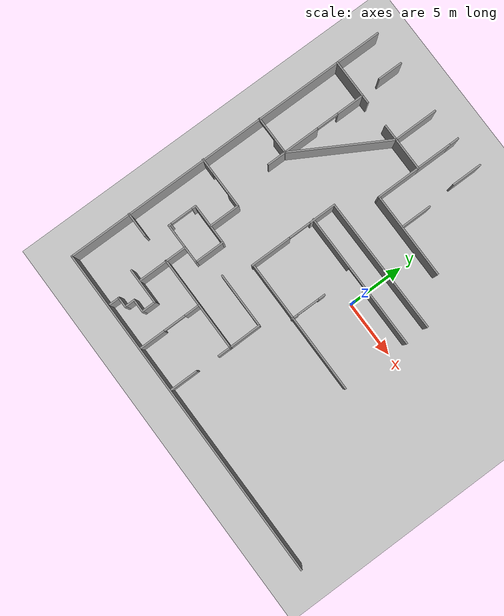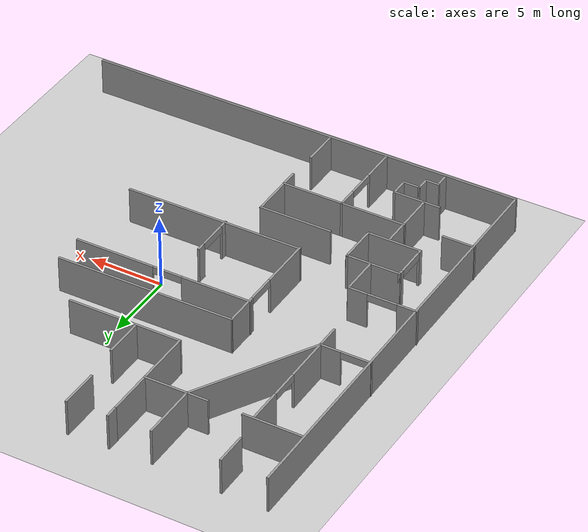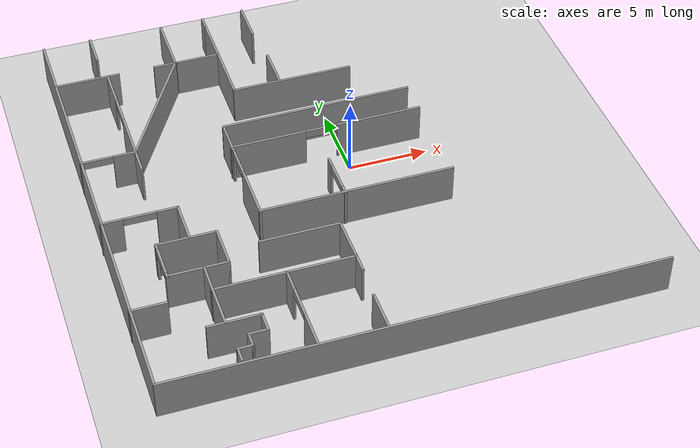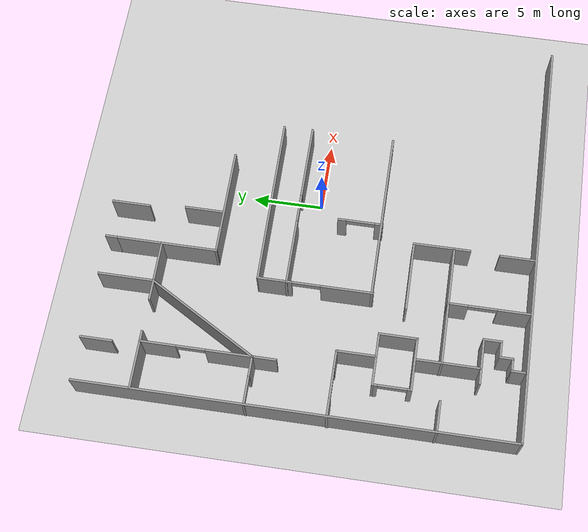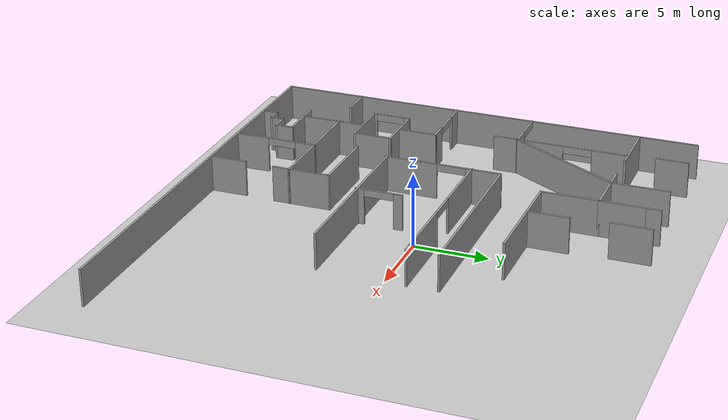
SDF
<sdf version="1.7">
 <world name="default">
  <model name="ground_plane">
   <static>1</static>
   <link name="link">
    <collision name="collision">
     <geometry><plane><normal>0 0 1</normal><size>100 100</size></plane></geometry>
     <surface><friction><ode><mu>100</mu><mu2>50</mu2></ode></friction></surface>
    </collision>
    <visual name="visual">
     <cast_shadows>0</cast_shadows>
     <geometry><plane><normal>0 0 1</normal><size>100 100</size></plane></geometry>
     <material>
      <script><uri>file://media/materials/scripts/gazebo.material</uri><name>Gazebo/Grey</name></script>
     </material>
    </visual>
   </link>
  </model>
  <model name="Untitled">
   <pose>-0.105598 -0.502872 0 0 -0 0</pose>
   <link name="Wall_10">
    <pose>-6.94082 -0.072116 0 0 -0 1.5708</pose>
    <visual name="Wall_10_Visual_0">
     <pose>-2.22777 0 1.25 0 -0 0</pose>
     <geometry><box><size>3.69446 0.15 2.5</size></box></geometry>
     <material>
      <script><uri>file://media/materials/scripts/gazebo.material</uri><name>Gazebo/Grey</name></script>
      <ambient>1 1 1 1</ambient>
     </material>
     <meta><layer>0</layer></meta>
    </visual>
    <collision name="Wall_10_Collision_0">
     <geometry><box><size>3.69446 0.15 2.5</size></box></geometry>
     <pose>-2.22777 0 1.25 0 -0 0</pose>
    </collision>
    <visual name="Wall_10_Visual_1">
     <pose>2.84723 0 1.25 0 -0 0</pose>
     <geometry><box><size>2.45554 0.15 2.5</size></box></geometry>
     <material>
      <script><uri>file://media/materials/scripts/gazebo.material</uri><name>Gazebo/Grey</name></script>
      <ambient>1 1 1 1</ambient>
     </material>
     <meta><layer>0</layer></meta>
    </visual>
    <collision name="Wall_10_Collision_1">
     <geometry><box><size>2.45554 0.15 2.5</size></box></geometry>
     <pose>2.84723 0 1.25 0 -0 0</pose>
    </collision>
    <visual name="Wall_10_Visual_2">
     <pose>0.619458 0 2.25 0 -0 0</pose>
     <geometry><box><size>2 0.15 0.5</size></box></geometry>
     <material>
      <script><uri>file://media/materials/scripts/gazebo.material</uri><name>Gazebo/Grey</name></script>
      <ambient>1 1 1 1</ambient>
     </material>
     <meta><layer>0</layer></meta>
    </visual>
    <collision name="Wall_10_Collision_2">
     <geometry><box><size>2 0.15 0.5</size></box></geometry>
     <pose>0.619458 0 2.25 0 -0 0</pose>
    </collision>
   </link>
   <link name="Wall_12">
    <collision name="Wall_12_Collision">
     <geometry><box><size>12.15 0.15 2.5</size></box></geometry>
     <pose>0 0 1.25 0 -0 0</pose>
    </collision>
    <visual name="Wall_12_Visual">
     <pose>0 0 1.25 0 -0 0</pose>
     <geometry><box><size>12.15 0.15 2.5</size></box></geometry>
     <material>
      <script><uri>file://media/materials/scripts/gazebo.material</uri><name>Gazebo/Grey</name></script>
      <ambient>1 1 1 1</ambient>
     </material>
     <meta><layer>0</layer></meta>
    </visual>
    <pose>-0.940819 -4.00136 0 0 -0 0</pose>
   </link>
   <link name="Wall_132">
    <collision name="Wall_132_Collision">
     <geometry><box><size>3 0.15 2.5</size></box></geometry>
     <pose>0 0 1.25 0 -0 0</pose>
    </collision>
    <visual name="Wall_132_Visual">
     <pose>0 0 1.25 0 -0 0</pose>
     <geometry><box><size>3 0.15 2.5</size></box></geometry>
     <material>
      <script><uri>file://media/materials/scripts/gazebo.material</uri><name>Gazebo/Grey</name></script>
      <ambient>1 1 1 1</ambient>
     </material>
     <meta><layer>0</layer></meta>
    </visual>
    <pose>-6.7689 10.9946 0 0 -0 0</pose>
   </link>
   <link name="Wall_133">
    <collision name="Wall_133_Collision">
     <geometry><box><size>4 0.15 2.5</size></box></geometry>
     <pose>0 0 1.25 0 -0 0</pose>
    </collision>
    <visual name="Wall_133_Visual">
     <pose>0 0 1.25 0 -0 0</pose>
     <geometry><box><size>4 0.15 2.5</size></box></geometry>
     <material>
      <script><uri>file://media/materials/scripts/gazebo.material</uri><name>Gazebo/Grey</name></script>
      <ambient>1 1 1 1</ambient>
     </material>
     <meta><layer>0</layer></meta>
    </visual>
    <pose>-5.34389 9.06962 0 0 -0 -1.5708</pose>
   </link>
   <link name="Wall_134">
    <collision name="Wall_134_Collision">
     <geometry><box><size>7.75 0.15 2.5</size></box></geometry>
     <pose>0 0 1.25 0 -0 0</pose>
    </collision>
    <visual name="Wall_134_Visual">
     <pose>0 0 1.25 0 -0 0</pose>
     <geometry><box><size>7.75 0.15 2.5</size></box></geometry>
     <material>
      <script><uri>file://media/materials/scripts/gazebo.material</uri><name>Gazebo/Grey</name></script>
      <ambient>1 1 1 1</ambient>
     </material>
     <meta><layer>0</layer></meta>
    </visual>
    <pose>-1.5439 7.14462 0 0 -0 0</pose>
   </link>
   <link name="Wall_138">
    <collision name="Wall_138_Collision">
     <geometry><box><size>3.25 0.15 2.5</size></box></geometry>
     <pose>0 0 1.25 0 -0 0</pose>
    </collision>
    <visual name="Wall_138_Visual">
     <pose>0 0 1.25 0 -0 0</pose>
     <geometry><box><size>3.25 0.15 2.5</size></box></geometry>
     <material>
      <script><uri>file://media/materials/scripts/gazebo.material</uri><name>Gazebo/Grey</name></script>
      <ambient>1 1 1 1</ambient>
     </material>
     <meta><layer>0</layer></meta>
    </visual>
    <pose>-5.34389 12.5446 0 0 -0 1.5708</pose>
   </link>
   <link name="Wall_139">
    <collision name="Wall_139_Collision">
     <geometry><box><size>1 0.15 2.5</size></box></geometry>
     <pose>0 0 1.25 0 -0 0</pose>
    </collision>
    <visual name="Wall_139_Visual">
     <pose>0 0 1.25 0 -0 0</pose>
     <geometry><box><size>1 0.15 2.5</size></box></geometry>
     <material>
      <script><uri>file://media/materials/scripts/gazebo.material</uri><name>Gazebo/Grey</name></script>
      <ambient>1 1 1 1</ambient>
     </material>
     <meta><layer>0</layer></meta>
    </visual>
    <pose>-5.34389 14.5196 0 0 -0 1.5708</pose>
   </link>
   <link name="Wall_141">
    <collision name="Wall_141_Collision">
     <geometry><box><size>2.75 0.15 2.5</size></box></geometry>
     <pose>0 0 1.25 0 -0 0</pose>
    </collision>
    <visual name="Wall_141_Visual">
     <pose>0 0 1.25 0 -0 0</pose>
     <geometry><box><size>2.75 0.15 2.5</size></box></geometry>
     <material>
      <script><uri>file://media/materials/scripts/gazebo.material</uri><name>Gazebo/Grey</name></script>
      <ambient>1 1 1 1</ambient>
     </material>
     <meta><layer>0</layer></meta>
    </visual>
    <pose>-2.3552 8.55347 0 0 -0 1.5708</pose>
   </link>
   <link name="Wall_143">
    <collision name="Wall_143_Collision">
     <geometry><box><size>2.75 0.15 2.5</size></box></geometry>
     <pose>0 0 1.25 0 -0 0</pose>
    </collision>
    <visual name="Wall_143_Visual">
     <pose>0 0 1.25 0 -0 0</pose>
     <geometry><box><size>2.75 0.15 2.5</size></box></geometry>
     <material>
      <script><uri>file://media/materials/scripts/gazebo.material</uri><name>Gazebo/Grey</name></script>
      <ambient>1 1 1 1</ambient>
     </material>
     <meta><layer>0</layer></meta>
    </visual>
    <pose>-2.61835 13.7628 0 0 -0 -1.5708</pose>
   </link>
   <link name="Wall_16">
    <collision name="Wall_16_Collision">
     <geometry><box><size>12.1502 0.15 2.5</size></box></geometry>
     <pose>0 0 1.25 0 -0 0</pose>
    </collision>
    <visual name="Wall_16_Visual">
     <pose>0 0 1.25 0 -0 0</pose>
     <geometry><box><size>12.1502 0.15 2.5</size></box></geometry>
     <material>
      <script><uri>file://media/materials/scripts/gazebo.material</uri><name>Gazebo/Grey</name></script>
      <ambient>1 1 1 1</ambient>
     </material>
     <meta><layer>0</layer></meta>
    </visual>
    <pose>-0.940819 3.96326 0 0 -0 0.005896</pose>
   </link>
   <link name="Wall_20">
    <pose>-1.71937 -2.51877 0 0 -0 -1.5708</pose>
    <visual name="Wall_20_Visual_0">
     <pose>-1.30824 0 1.25 0 -0 0</pose>
     <geometry><box><size>0.633515 0.15 2.5</size></box></geometry>
     <material>
      <script><uri>file://media/materials/scripts/gazebo.material</uri><name>Gazebo/Grey</name></script>
      <ambient>1 1 1 1</ambient>
     </material>
     <meta><layer>0</layer></meta>
    </visual>
    <collision name="Wall_20_Collision_0">
     <geometry><box><size>0.633515 0.15 2.5</size></box></geometry>
     <pose>-1.30824 0 1.25 0 -0 0</pose>
    </collision>
    <visual name="Wall_20_Visual_1">
     <pose>1.31676 0 1.25 0 -0 0</pose>
     <geometry><box><size>0.616485 0.15 2.5</size></box></geometry>
     <material>
      <script><uri>file://media/materials/scripts/gazebo.material</uri><name>Gazebo/Grey</name></script>
      <ambient>1 1 1 1</ambient>
     </material>
     <meta><layer>0</layer></meta>
    </visual>
    <collision name="Wall_20_Collision_1">
     <geometry><box><size>0.616485 0.15 2.5</size></box></geometry>
     <pose>1.31676 0 1.25 0 -0 0</pose>
    </collision>
    <visual name="Wall_20_Visual_2">
     <pose>0.008515 0 2.25 0 -0 0</pose>
     <geometry><box><size>2 0.15 0.5</size></box></geometry>
     <material>
      <script><uri>file://media/materials/scripts/gazebo.material</uri><name>Gazebo/Grey</name></script>
      <ambient>1 1 1 1</ambient>
     </material>
     <meta><layer>0</layer></meta>
    </visual>
    <collision name="Wall_20_Collision_2">
     <geometry><box><size>2 0.15 0.5</size></box></geometry>
     <pose>0.008515 0 2.25 0 -0 0</pose>
    </collision>
   </link>
   <link name="Wall_22">
    <pose>-0.939938 1.92283 0 0 -0 0</pose>
    <visual name="Wall_22_Visual_0">
     <pose>-3.72488 0 1.25 0 -0 0</pose>
     <geometry><box><size>4.80023 0.15 2.5</size></box></geometry>
     <material>
      <script><uri>file://media/materials/scripts/gazebo.material</uri><name>Gazebo/Grey</name></script>
      <ambient>1 1 1 1</ambient>
     </material>
     <meta><layer>0</layer></meta>
    </visual>
    <collision name="Wall_22_Collision_0">
     <geometry><box><size>4.80023 0.15 2.5</size></box></geometry>
     <pose>-3.72488 0 1.25 0 -0 0</pose>
    </collision>
    <visual name="Wall_22_Visual_1">
     <pose>3.40012 0 1.25 0 -0 0</pose>
     <geometry><box><size>5.44977 0.15 2.5</size></box></geometry>
     <material>
      <script><uri>file://media/materials/scripts/gazebo.material</uri><name>Gazebo/Grey</name></script>
      <ambient>1 1 1 1</ambient>
     </material>
     <meta><layer>0</layer></meta>
    </visual>
    <collision name="Wall_22_Collision_1">
     <geometry><box><size>5.44977 0.15 2.5</size></box></geometry>
     <pose>3.40012 0 1.25 0 -0 0</pose>
    </collision>
    <visual name="Wall_22_Visual_2">
     <pose>-0.324766 0 2.25 0 -0 0</pose>
     <geometry><box><size>2 0.15 0.5</size></box></geometry>
     <material>
      <script><uri>file://media/materials/scripts/gazebo.material</uri><name>Gazebo/Grey</name></script>
      <ambient>1 1 1 1</ambient>
     </material>
     <meta><layer>0</layer></meta>
    </visual>
    <collision name="Wall_22_Collision_2">
     <geometry><box><size>2 0.15 0.5</size></box></geometry>
     <pose>-0.324766 0 2.25 0 -0 0</pose>
    </collision>
   </link>
   <link name="Wall_24">
    <collision name="Wall_24_Collision">
     <geometry><box><size>4.15 0.15 2.5</size></box></geometry>
     <pose>0 0 1.25 0 -0 0</pose>
    </collision>
    <visual name="Wall_24_Visual">
     <pose>0 0 1.25 0 -0 0</pose>
     <geometry><box><size>4.15 0.15 2.5</size></box></geometry>
     <material>
      <script><uri>file://media/materials/scripts/gazebo.material</uri><name>Gazebo/Grey</name></script>
      <ambient>1 1 1 1</ambient>
     </material>
     <meta><layer>0</layer></meta>
    </visual>
    <pose>-13.9408 10.9986 0 0 -0 0</pose>
   </link>
   <link name="Wall_26">
    <collision name="Wall_26_Collision">
     <geometry><box><size>1.5 0.15 2.5</size></box></geometry>
     <pose>0 0 1.25 0 -0 0</pose>
    </collision>
    <visual name="Wall_26_Visual">
     <pose>0 0 1.25 0 -0 0</pose>
     <geometry><box><size>1.5 0.15 2.5</size></box></geometry>
     <material>
      <script><uri>file://media/materials/scripts/gazebo.material</uri><name>Gazebo/Grey</name></script>
      <ambient>1 1 1 1</ambient>
     </material>
     <meta><layer>0</layer></meta>
    </visual>
    <pose>-8.8689 10.9946 0 0 -0 0</pose>
   </link>
   <link name="Wall_27">
    <collision name="Wall_27_Collision">
     <geometry><box><size>4 0.15 2.5</size></box></geometry>
     <pose>0 0 1.25 0 -0 0</pose>
    </collision>
    <visual name="Wall_27_Visual">
     <pose>0 0 1.25 0 -0 0</pose>
     <geometry><box><size>4 0.15 2.5</size></box></geometry>
     <material>
      <script><uri>file://media/materials/scripts/gazebo.material</uri><name>Gazebo/Grey</name></script>
      <ambient>1 1 1 1</ambient>
     </material>
     <meta><layer>0</layer></meta>
    </visual>
    <pose>-8.19389 12.9196 0 0 -0 1.5708</pose>
   </link>
   <link name="Wall_29">
    <collision name="Wall_29_Collision">
     <geometry><box><size>9 0.15 2.5</size></box></geometry>
     <pose>0 0 1.25 0 -0 0</pose>
    </collision>
    <visual name="Wall_29_Visual">
     <pose>0 0 1.25 0 -0 0</pose>
     <geometry><box><size>9 0.15 2.5</size></box></geometry>
     <material>
      <script><uri>file://media/materials/scripts/gazebo.material</uri><name>Gazebo/Grey</name></script>
      <ambient>1 1 1 1</ambient>
     </material>
     <meta><layer>0</layer></meta>
    </visual>
    <pose>-10.4064 7.16245 0 0 -0 -2.0944</pose>
   </link>
   <link name="Wall_33">
    <pose>-14.2939 3.33029 0 0 -0 3.14159</pose>
    <visual name="Wall_33_Visual_0">
     <pose>-1.02372 0 1.25 0 -0 0</pose>
     <geometry><box><size>1.45256 0.15 2.5</size></box></geometry>
     <material>
      <script><uri>file://media/materials/scripts/gazebo.material</uri><name>Gazebo/Grey</name></script>
      <ambient>1 1 1 1</ambient>
     </material>
     <meta><layer>0</layer></meta>
    </visual>
    <collision name="Wall_33_Collision_0">
     <geometry><box><size>1.45256 0.15 2.5</size></box></geometry>
     <pose>-1.02372 0 1.25 0 -0 0</pose>
    </collision>
    <visual name="Wall_33_Visual_1">
     <pose>1.72628 0 1.25 0 -0 0</pose>
     <geometry><box><size>0.047445 0.15 2.5</size></box></geometry>
     <material>
      <script><uri>file://media/materials/scripts/gazebo.material</uri><name>Gazebo/Grey</name></script>
      <ambient>1 1 1 1</ambient>
     </material>
     <meta><layer>0</layer></meta>
    </visual>
    <collision name="Wall_33_Collision_1">
     <geometry><box><size>0.047445 0.15 2.5</size></box></geometry>
     <pose>1.72628 0 1.25 0 -0 0</pose>
    </collision>
    <visual name="Wall_33_Visual_2">
     <pose>0.702555 0 2.25 0 -0 0</pose>
     <geometry><box><size>2 0.15 0.5</size></box></geometry>
     <material>
      <script><uri>file://media/materials/scripts/gazebo.material</uri><name>Gazebo/Grey</name></script>
      <ambient>1 1 1 1</ambient>
     </material>
     <meta><layer>0</layer></meta>
    </visual>
    <collision name="Wall_33_Collision_2">
     <geometry><box><size>2 0.15 0.5</size></box></geometry>
     <pose>0.702555 0 2.25 0 -0 0</pose>
    </collision>
   </link>
   <link name="Wall_35">
    <pose>-12.6189 7.13029 0 0 -0 1.5708</pose>
    <visual name="Wall_35_Visual_0">
     <pose>-2.23626 0 1.25 0 -0 0</pose>
     <geometry><box><size>3.27749 0.15 2.5</size></box></geometry>
     <material>
      <script><uri>file://media/materials/scripts/gazebo.material</uri><name>Gazebo/Grey</name></script>
      <ambient>1 1 1 1</ambient>
     </material>
     <meta><layer>0</layer></meta>
    </visual>
    <collision name="Wall_35_Collision_0">
     <geometry><box><size>3.27749 0.15 2.5</size></box></geometry>
     <pose>-2.23626 0 1.25 0 -0 0</pose>
    </collision>
    <visual name="Wall_35_Visual_1">
     <pose>2.63874 0 1.25 0 -0 0</pose>
     <geometry><box><size>2.47251 0.15 2.5</size></box></geometry>
     <material>
      <script><uri>file://media/materials/scripts/gazebo.material</uri><name>Gazebo/Grey</name></script>
      <ambient>1 1 1 1</ambient>
     </material>
     <meta><layer>0</layer></meta>
    </visual>
    <collision name="Wall_35_Collision_1">
     <geometry><box><size>2.47251 0.15 2.5</size></box></geometry>
     <pose>2.63874 0 1.25 0 -0 0</pose>
    </collision>
    <visual name="Wall_35_Visual_2">
     <pose>0.402489 0 2.25 0 -0 0</pose>
     <geometry><box><size>2 0.15 0.5</size></box></geometry>
     <material>
      <script><uri>file://media/materials/scripts/gazebo.material</uri><name>Gazebo/Grey</name></script>
      <ambient>1 1 1 1</ambient>
     </material>
     <meta><layer>0</layer></meta>
    </visual>
    <collision name="Wall_35_Collision_2">
     <geometry><box><size>2 0.15 0.5</size></box></geometry>
     <pose>0.402489 0 2.25 0 -0 0</pose>
    </collision>
   </link>
   <link name="Wall_37">
    <collision name="Wall_37_Collision">
     <geometry><box><size>2.25 0.15 2.5</size></box></geometry>
     <pose>0 0 1.25 0 -0 0</pose>
    </collision>
    <visual name="Wall_37_Visual">
     <pose>0 0 1.25 0 -0 0</pose>
     <geometry><box><size>2.25 0.15 2.5</size></box></geometry>
     <material>
      <script><uri>file://media/materials/scripts/gazebo.material</uri><name>Gazebo/Grey</name></script>
      <ambient>1 1 1 1</ambient>
     </material>
     <meta><layer>0</layer></meta>
    </visual>
    <pose>-12.8901 13.9642 0 0 -0 -1.5708</pose>
   </link>
   <link name="Wall_39">
    <collision name="Wall_39_Collision">
     <geometry><box><size>1.75 0.15 2.5</size></box></geometry>
     <pose>0 0 1.25 0 -0 0</pose>
    </collision>
    <visual name="Wall_39_Visual">
     <pose>0 0 1.25 0 -0 0</pose>
     <geometry><box><size>1.75 0.15 2.5</size></box></geometry>
     <material>
      <script><uri>file://media/materials/scripts/gazebo.material</uri><name>Gazebo/Grey</name></script>
      <ambient>1 1 1 1</ambient>
     </material>
     <meta><layer>0</layer></meta>
    </visual>
    <pose>-12.6189 2.53029 0 0 -0 -1.5708</pose>
   </link>
   <link name="Wall_4">
    <collision name="Wall_4_Collision">
     <geometry><box><size>30.15 0.15 2.5</size></box></geometry>
     <pose>0 0 1.25 0 -0 0</pose>
    </collision>
    <visual name="Wall_4_Visual">
     <pose>0 0 1.25 0 -0 0</pose>
     <geometry><box><size>30.15 0.15 2.5</size></box></geometry>
     <material>
      <script><uri>file://media/materials/scripts/gazebo.material</uri><name>Gazebo/Grey</name></script>
      <ambient>1 1 1 1</ambient>
     </material>
     <meta><layer>0</layer></meta>
    </visual>
    <pose>-15.9408 -0.001359 0 0 -0 1.5708</pose>
   </link>
   <link name="Wall_41">
    <pose>-13.6967 -2.19975 0 0 -0 0</pose>
    <visual name="Wall_41_Visual_0">
     <pose>-1.67653 0 1.25 0 -0 0</pose>
     <geometry><box><size>1.39694 0.15 2.5</size></box></geometry>
     <material>
      <script><uri>file://media/materials/scripts/gazebo.material</uri><name>Gazebo/Grey</name></script>
      <ambient>1 1 1 1</ambient>
     </material>
     <meta><layer>0</layer></meta>
    </visual>
    <collision name="Wall_41_Collision_0">
     <geometry><box><size>1.39694 0.15 2.5</size></box></geometry>
     <pose>-1.67653 0 1.25 0 -0 0</pose>
    </collision>
    <visual name="Wall_41_Visual_1">
     <pose>1.69847 0 1.25 0 -0 0</pose>
     <geometry><box><size>1.35306 0.15 2.5</size></box></geometry>
     <material>
      <script><uri>file://media/materials/scripts/gazebo.material</uri><name>Gazebo/Grey</name></script>
      <ambient>1 1 1 1</ambient>
     </material>
     <meta><layer>0</layer></meta>
    </visual>
    <collision name="Wall_41_Collision_1">
     <geometry><box><size>1.35306 0.15 2.5</size></box></geometry>
     <pose>1.69847 0 1.25 0 -0 0</pose>
    </collision>
    <visual name="Wall_41_Visual_2">
     <pose>0.021943 0 2.25 0 -0 0</pose>
     <geometry><box><size>2 0.15 0.5</size></box></geometry>
     <material>
      <script><uri>file://media/materials/scripts/gazebo.material</uri><name>Gazebo/Grey</name></script>
      <ambient>1 1 1 1</ambient>
     </material>
     <meta><layer>0</layer></meta>
    </visual>
    <collision name="Wall_41_Collision_2">
     <geometry><box><size>2 0.15 0.5</size></box></geometry>
     <pose>0.021943 0 2.25 0 -0 0</pose>
    </collision>
   </link>
   <link name="Wall_45">
    <pose>-13.3751 -6.17488 0 0 -0 -1.5708</pose>
    <visual name="Wall_45_Visual_0">
     <pose>-1.16612 0 1.25 0 -0 0</pose>
     <geometry><box><size>0.417771 0.15 2.5</size></box></geometry>
     <material>
      <script><uri>file://media/materials/scripts/gazebo.material</uri><name>Gazebo/Grey</name></script>
      <ambient>1 1 1 1</ambient>
     </material>
     <meta><layer>0</layer></meta>
    </visual>
    <collision name="Wall_45_Collision_0">
     <geometry><box><size>0.417771 0.15 2.5</size></box></geometry>
     <pose>-1.16612 0 1.25 0 -0 0</pose>
    </collision>
    <visual name="Wall_45_Visual_1">
     <pose>1.20888 0 1.25 0 -0 0</pose>
     <geometry><box><size>0.332229 0.15 2.5</size></box></geometry>
     <material>
      <script><uri>file://media/materials/scripts/gazebo.material</uri><name>Gazebo/Grey</name></script>
      <ambient>1 1 1 1</ambient>
     </material>
     <meta><layer>0</layer></meta>
    </visual>
    <collision name="Wall_45_Collision_1">
     <geometry><box><size>0.332229 0.15 2.5</size></box></geometry>
     <pose>1.20888 0 1.25 0 -0 0</pose>
    </collision>
    <visual name="Wall_45_Visual_2">
     <pose>0.042771 0 2.25 0 -0 0</pose>
     <geometry><box><size>2 0.15 0.5</size></box></geometry>
     <material>
      <script><uri>file://media/materials/scripts/gazebo.material</uri><name>Gazebo/Grey</name></script>
      <ambient>1 1 1 1</ambient>
     </material>
     <meta><layer>0</layer></meta>
    </visual>
    <collision name="Wall_45_Collision_2">
     <geometry><box><size>2 0.15 0.5</size></box></geometry>
     <pose>0.042771 0 2.25 0 -0 0</pose>
    </collision>
   </link>
   <link name="Wall_46">
    <collision name="Wall_46_Collision">
     <geometry><box><size>3.75 0.15 2.5</size></box></geometry>
     <pose>0 0 1.25 0 -0 0</pose>
    </collision>
    <visual name="Wall_46_Visual">
     <pose>0 0 1.25 0 -0 0</pose>
     <geometry><box><size>3.75 0.15 2.5</size></box></geometry>
     <material>
      <script><uri>file://media/materials/scripts/gazebo.material</uri><name>Gazebo/Grey</name></script>
      <ambient>1 1 1 1</ambient>
     </material>
     <meta><layer>0</layer></meta>
    </visual>
    <pose>-11.5751 -7.47488 0 0 -0 0</pose>
   </link>
   <link name="Wall_47">
    <collision name="Wall_47_Collision">
     <geometry><box><size>2.75 0.15 2.5</size></box></geometry>
     <pose>0 0 1.25 0 -0 0</pose>
    </collision>
    <visual name="Wall_47_Visual">
     <pose>0 0 1.25 0 -0 0</pose>
     <geometry><box><size>2.75 0.15 2.5</size></box></geometry>
     <material>
      <script><uri>file://media/materials/scripts/gazebo.material</uri><name>Gazebo/Grey</name></script>
      <ambient>1 1 1 1</ambient>
     </material>
     <meta><layer>0</layer></meta>
    </visual>
    <pose>-9.77512 -6.17488 0 0 -0 1.5708</pose>
   </link>
   <link name="Wall_48">
    <collision name="Wall_48_Collision">
     <geometry><box><size>3.75 0.15 2.5</size></box></geometry>
     <pose>0 0 1.25 0 -0 0</pose>
    </collision>
    <visual name="Wall_48_Visual">
     <pose>0 0 1.25 0 -0 0</pose>
     <geometry><box><size>3.75 0.15 2.5</size></box></geometry>
     <material>
      <script><uri>file://media/materials/scripts/gazebo.material</uri><name>Gazebo/Grey</name></script>
      <ambient>1 1 1 1</ambient>
     </material>
     <meta><layer>0</layer></meta>
    </visual>
    <pose>-11.5751 -4.87488 0 0 -0 3.14159</pose>
   </link>
   <link name="Wall_50">
    <collision name="Wall_50_Collision">
     <geometry><box><size>2.75 0.15 2.5</size></box></geometry>
     <pose>0 0 1.25 0 -0 0</pose>
    </collision>
    <visual name="Wall_50_Visual">
     <pose>0 0 1.25 0 -0 0</pose>
     <geometry><box><size>2.75 0.15 2.5</size></box></geometry>
     <material>
      <script><uri>file://media/materials/scripts/gazebo.material</uri><name>Gazebo/Grey</name></script>
      <ambient>1 1 1 1</ambient>
     </material>
     <meta><layer>0</layer></meta>
    </visual>
    <pose>-11.3967 -3.49975 0 0 -0 -1.5708</pose>
   </link>
   <link name="Wall_52">
    <collision name="Wall_52_Collision">
     <geometry><box><size>4.5 0.15 2.5</size></box></geometry>
     <pose>0 0 1.25 0 -0 0</pose>
    </collision>
    <visual name="Wall_52_Visual">
     <pose>0 0 1.25 0 -0 0</pose>
     <geometry><box><size>4.5 0.15 2.5</size></box></geometry>
     <material>
      <script><uri>file://media/materials/scripts/gazebo.material</uri><name>Gazebo/Grey</name></script>
      <ambient>1 1 1 1</ambient>
     </material>
     <meta><layer>0</layer></meta>
    </visual>
    <pose>-11.2228 -9.68808 0 0 -0 -1.5708</pose>
   </link>
   <link name="Wall_56">
    <collision name="Wall_56_Collision">
     <geometry><box><size>2.25 0.15 2.5</size></box></geometry>
     <pose>0 0 1.25 0 -0 0</pose>
    </collision>
    <visual name="Wall_56_Visual">
     <pose>0 0 1.25 0 -0 0</pose>
     <geometry><box><size>2.25 0.15 2.5</size></box></geometry>
     <material>
      <script><uri>file://media/materials/scripts/gazebo.material</uri><name>Gazebo/Grey</name></script>
      <ambient>1 1 1 1</ambient>
     </material>
     <meta><layer>0</layer></meta>
    </visual>
    <pose>-14.9286 -9.44755 0 0 -0 0</pose>
   </link>
   <link name="Wall_58">
    <collision name="Wall_58_Collision">
     <geometry><box><size>3.25 0.15 2.5</size></box></geometry>
     <pose>0 0 1.25 0 -0 0</pose>
    </collision>
    <visual name="Wall_58_Visual">
     <pose>0 0 1.25 0 -0 0</pose>
     <geometry><box><size>3.25 0.15 2.5</size></box></geometry>
     <material>
      <script><uri>file://media/materials/scripts/gazebo.material</uri><name>Gazebo/Grey</name></script>
      <ambient>1 1 1 1</ambient>
     </material>
     <meta><layer>0</layer></meta>
    </visual>
    <pose>-10.7067 -11.9133 0 0 -0 0</pose>
   </link>
   <link name="Wall_59">
    <collision name="Wall_59_Collision">
     <geometry><box><size>1.34305 0.15 2.5</size></box></geometry>
     <pose>0 0 1.25 0 -0 0</pose>
    </collision>
    <visual name="Wall_59_Visual">
     <pose>0 0 1.25 0 -0 0</pose>
     <geometry><box><size>1.34305 0.15 2.5</size></box></geometry>
     <material>
      <script><uri>file://media/materials/scripts/gazebo.material</uri><name>Gazebo/Grey</name></script>
      <ambient>1 1 1 1</ambient>
     </material>
     <meta><layer>0</layer></meta>
    </visual>
    <pose>-9.15666 -12.5098 0 0 -0 -1.5708</pose>
   </link>
   <link name="Wall_65">
    <collision name="Wall_65_Collision">
     <geometry><box><size>1.25 0.15 2.5</size></box></geometry>
     <pose>0 0 1.25 0 -0 0</pose>
    </collision>
    <visual name="Wall_65_Visual">
     <pose>0 0 1.25 0 -0 0</pose>
     <geometry><box><size>1.25 0.15 2.5</size></box></geometry>
     <material>
      <script><uri>file://media/materials/scripts/gazebo.material</uri><name>Gazebo/Grey</name></script>
      <ambient>1 1 1 1</ambient>
     </material>
     <meta><layer>0</layer></meta>
    </visual>
    <pose>-9.70666 -13.1064 0 0 -0 3.14159</pose>
   </link>
   <link name="Wall_66">
    <collision name="Wall_66_Collision">
     <geometry><box><size>1 0.15 2.5</size></box></geometry>
     <pose>0 0 1.25 0 -0 0</pose>
    </collision>
    <visual name="Wall_66_Visual">
     <pose>0 0 1.25 0 -0 0</pose>
     <geometry><box><size>1 0.15 2.5</size></box></geometry>
     <material>
      <script><uri>file://media/materials/scripts/gazebo.material</uri><name>Gazebo/Grey</name></script>
      <ambient>1 1 1 1</ambient>
     </material>
     <meta><layer>0</layer></meta>
    </visual>
    <pose>-10.2567 -13.5314 0 0 -0 -1.5708</pose>
   </link>
   <link name="Wall_67">
    <collision name="Wall_67_Collision">
     <geometry><box><size>1 0.15 2.5</size></box></geometry>
     <pose>0 0 1.25 0 -0 0</pose>
    </collision>
    <visual name="Wall_67_Visual">
     <pose>0 0 1.25 0 -0 0</pose>
     <geometry><box><size>1 0.15 2.5</size></box></geometry>
     <material>
      <script><uri>file://media/materials/scripts/gazebo.material</uri><name>Gazebo/Grey</name></script>
      <ambient>1 1 1 1</ambient>
     </material>
     <meta><layer>0</layer></meta>
    </visual>
    <pose>-10.6817 -13.9564 0 0 -0 3.14159</pose>
   </link>
   <link name="Wall_68">
    <collision name="Wall_68_Collision">
     <geometry><box><size>1 0.15 2.5</size></box></geometry>
     <pose>0 0 1.25 0 -0 0</pose>
    </collision>
    <visual name="Wall_68_Visual">
     <pose>0 0 1.25 0 -0 0</pose>
     <geometry><box><size>1 0.15 2.5</size></box></geometry>
     <material>
      <script><uri>file://media/materials/scripts/gazebo.material</uri><name>Gazebo/Grey</name></script>
      <ambient>1 1 1 1</ambient>
     </material>
     <meta><layer>0</layer></meta>
    </visual>
    <pose>-11.1067 -14.3814 0 0 -0 -1.5708</pose>
   </link>
   <link name="Wall_70">
    <collision name="Wall_70_Collision">
     <geometry><box><size>4.5 0.15 2.5</size></box></geometry>
     <pose>0 0 1.25 0 -0 0</pose>
    </collision>
    <visual name="Wall_70_Visual">
     <pose>0 0 1.25 0 -0 0</pose>
     <geometry><box><size>4.5 0.15 2.5</size></box></geometry>
     <material>
      <script><uri>file://media/materials/scripts/gazebo.material</uri><name>Gazebo/Grey</name></script>
      <ambient>1 1 1 1</ambient>
     </material>
     <meta><layer>0</layer></meta>
    </visual>
    <pose>-9.09041 -9.27813 0 0 -0 0</pose>
   </link>
   <link name="Wall_71">
    <pose>-6.91541 -12.0781 0 0 -0 -1.5708</pose>
    <visual name="Wall_71_Visual_0">
     <pose>-2.15565 0 1.25 0 -0 0</pose>
     <geometry><box><size>1.43869 0.15 2.5</size></box></geometry>
     <material>
      <script><uri>file://media/materials/scripts/gazebo.material</uri><name>Gazebo/Grey</name></script>
      <ambient>1 1 1 1</ambient>
     </material>
     <meta><layer>0</layer></meta>
    </visual>
    <collision name="Wall_71_Collision_0">
     <geometry><box><size>1.43869 0.15 2.5</size></box></geometry>
     <pose>-2.15565 0 1.25 0 -0 0</pose>
    </collision>
    <visual name="Wall_71_Visual_1">
     <pose>1.71934 0 1.25 0 -0 0</pose>
     <geometry><box><size>2.31131 0.15 2.5</size></box></geometry>
     <material>
      <script><uri>file://media/materials/scripts/gazebo.material</uri><name>Gazebo/Grey</name></script>
      <ambient>1 1 1 1</ambient>
     </material>
     <meta><layer>0</layer></meta>
    </visual>
    <collision name="Wall_71_Collision_1">
     <geometry><box><size>2.31131 0.15 2.5</size></box></geometry>
     <pose>1.71934 0 1.25 0 -0 0</pose>
    </collision>
    <visual name="Wall_71_Visual_2">
     <pose>-0.436311 0 2.25 0 -0 0</pose>
     <geometry><box><size>2 0.15 0.5</size></box></geometry>
     <material>
      <script><uri>file://media/materials/scripts/gazebo.material</uri><name>Gazebo/Grey</name></script>
      <ambient>1 1 1 1</ambient>
     </material>
     <meta><layer>0</layer></meta>
    </visual>
    <collision name="Wall_71_Collision_2">
     <geometry><box><size>2 0.15 0.5</size></box></geometry>
     <pose>-0.436311 0 2.25 0 -0 0</pose>
    </collision>
   </link>
   <link name="Wall_73">
    <collision name="Wall_73_Collision">
     <geometry><box><size>4.25 0.15 2.5</size></box></geometry>
     <pose>0 0 1.25 0 -0 0</pose>
    </collision>
    <visual name="Wall_73_Visual">
     <pose>0 0 1.25 0 -0 0</pose>
     <geometry><box><size>4.25 0.15 2.5</size></box></geometry>
     <material>
      <script><uri>file://media/materials/scripts/gazebo.material</uri><name>Gazebo/Grey</name></script>
      <ambient>1 1 1 1</ambient>
     </material>
     <meta><layer>0</layer></meta>
    </visual>
    <pose>-4.86541 -9.27813 0 0 -0 0</pose>
   </link>
   <link name="Wall_75">
    <collision name="Wall_75_Collision">
     <geometry><box><size>5 0.15 2.5</size></box></geometry>
     <pose>0 0 1.25 0 -0 0</pose>
    </collision>
    <visual name="Wall_75_Visual">
     <pose>0 0 1.25 0 -0 0</pose>
     <geometry><box><size>5 0.15 2.5</size></box></geometry>
     <material>
      <script><uri>file://media/materials/scripts/gazebo.material</uri><name>Gazebo/Grey</name></script>
      <ambient>1 1 1 1</ambient>
     </material>
     <meta><layer>0</layer></meta>
    </visual>
    <pose>-5.258 -6.45578 0 0 -0 3.14159</pose>
   </link>
   <link name="Wall_77">
    <collision name="Wall_77_Collision">
     <geometry><box><size>2.96235 0.15 2.5</size></box></geometry>
     <pose>0 0 1.25 0 -0 0</pose>
    </collision>
    <visual name="Wall_77_Visual">
     <pose>0 0 1.25 0 -0 0</pose>
     <geometry><box><size>2.96235 0.15 2.5</size></box></geometry>
     <material>
      <script><uri>file://media/materials/scripts/gazebo.material</uri><name>Gazebo/Grey</name></script>
      <ambient>1 1 1 1</ambient>
     </material>
     <meta><layer>0</layer></meta>
    </visual>
    <pose>-2.8242 -7.87198 0 0 -0 1.57705</pose>
   </link>
   <link name="Wall_8">
    <collision name="Wall_8_Collision">
     <geometry><box><size>30.15 0.15 2.5</size></box></geometry>
     <pose>0 0 1.25 0 -0 0</pose>
    </collision>
    <visual name="Wall_8_Visual">
     <pose>0 0 1.25 0 -0 0</pose>
     <geometry><box><size>30.15 0.15 2.5</size></box></geometry>
     <material>
      <script><uri>file://media/materials/scripts/gazebo.material</uri><name>Gazebo/Grey</name></script>
      <ambient>1 1 1 1</ambient>
     </material>
     <meta><layer>0</layer></meta>
    </visual>
    <pose>-0.940819 -15.0014 0 0 -0 0</pose>
   </link>
   <link name="Wall_83">
    <collision name="Wall_83_Collision">
     <geometry><box><size>2.5 0.15 2.5</size></box></geometry>
     <pose>0 0 1.25 0 -0 0</pose>
    </collision>
    <visual name="Wall_83_Visual">
     <pose>0 0 1.25 0 -0 0</pose>
     <geometry><box><size>2.5 0.15 2.5</size></box></geometry>
     <material>
      <script><uri>file://media/materials/scripts/gazebo.material</uri><name>Gazebo/Grey</name></script>
      <ambient>1 1 1 1</ambient>
     </material>
     <meta><layer>0</layer></meta>
    </visual>
    <pose>-2.89285 -13.6845 0 0 -0 1.5708</pose>
   </link>
   <link name="Wall_85">
    <collision name="Wall_85_Collision">
     <geometry><box><size>1.25 0.15 2.5</size></box></geometry>
     <pose>0 0 1.25 0 -0 0</pose>
    </collision>
    <visual name="Wall_85_Visual">
     <pose>0 0 1.25 0 -0 0</pose>
     <geometry><box><size>1.25 0.15 2.5</size></box></geometry>
     <material>
      <script><uri>file://media/materials/scripts/gazebo.material</uri><name>Gazebo/Grey</name></script>
      <ambient>1 1 1 1</ambient>
     </material>
     <meta><layer>0</layer></meta>
    </visual>
    <pose>-2.81541 -9.82813 0 0 -0 -1.5708</pose>
   </link>
   <static>1</static>
  </model>
 </world>
</sdf>
